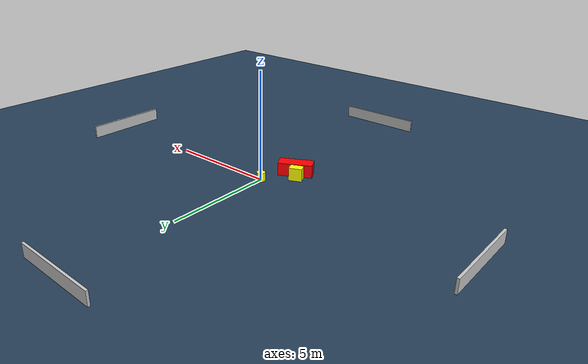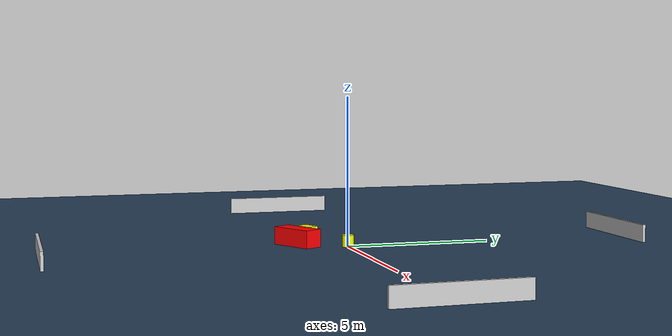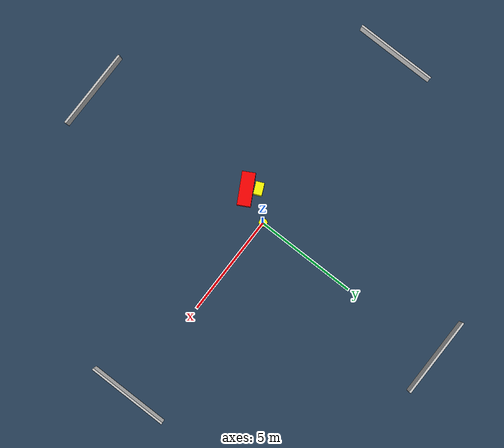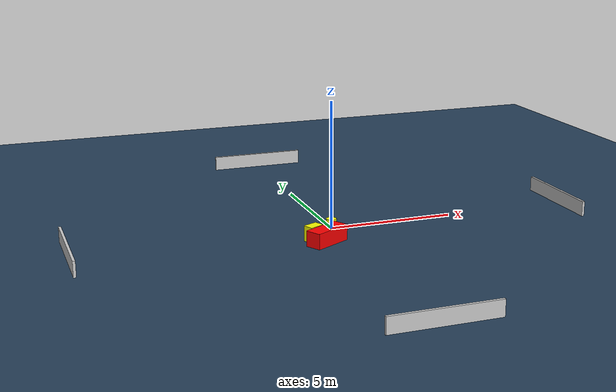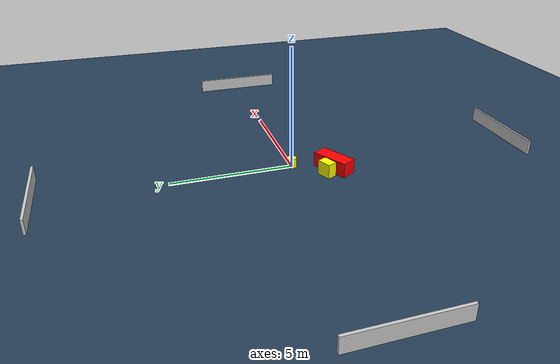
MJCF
<?xml version="1.0" ?>
<mujoco model="generated_environment">
  <option timestep="0.01" integrator="RK4" cone="elliptic"/>
  <default>
    <geom density="1"/>
  </default>
  <asset>
    <texture builtin="gradient" height="3072" name="skybox" rgb1="0.3 0.5 0.7" rgb2="0 0 0" type="skybox" width="512"/>
    <texture builtin="checker" height="300" name="groundplane" rgb1="0.2 0.3 0.4" rgb2="0.1 0.2 0.3" type="2d" width="300"/>
    <material name="groundplane" reflectance="0.2" texrepeat="5 5" texture="groundplane"/>
  </asset>
  <worldbody>
    <light dir="0 0 -1" directional="true" pos="0 0 1.5"/>
    <geom condim="3" friction="0.5 0.005 0.001" material="groundplane" name="floor" pos="0 0 0" size="0 0 0.05" type="plane"/>
    <body name="walls">
      <geom name="wall_1" condim="4" pos="-10.0 0.0 0.3" rgba="0.800000011920929 0.800000011920929 0.800000011920929 1.0" size="0.05 2.0 0.3" type="box"/>
      <geom name="wall_2" condim="4" pos="10.0 0.0 0.3" rgba="0.800000011920929 0.800000011920929 0.800000011920929 1.0" size="0.05 2.0 0.3" type="box"/>
      <geom name="wall_3" condim="4" pos="0.0 -10.0 0.3" rgba="0.800000011920929 0.800000011920929 0.800000011920929 1.0" size="2.0 0.05 0.3" type="box"/>
      <geom name="wall_4" condim="4" pos="0.0 10.0 0.3" rgba="0.800000011920929 0.800000011920929 0.800000011920929 1.0" size="2.0 0.05 0.3" type="box"/>
    </body>
    <body name="robot">
      <joint name="joint_x" type="slide" pos="0 0 0" axis="1 0 0"/>
      <joint name="joint_y" type="slide" pos="0 0 0" axis="0 1 0"/>
      <geom name="robot" type="cylinder" pos="0.0 0.0 0.2" size="0.2 0.2 0.0" mass="5.0" friction="1.0 0.005 0.0001" condim="4" rgba="1.0 1.0 0.0 1.0"/>
    </body>
    <body name="obstacle_1_movable">
      <geom name="obstacle_1_movable" condim="4" pos="-1.1118927855495933 -1.115189481525892 0.3" euler="0 0 24.54979415299404" friction="0.0 0.005 0.001" rgba="1.0 1.0 0.0 1.0" size="0.3007747259358769 0.20245263455904486 0.3" type="box" mass="0.1"/>
      <joint type="free"/>
    </body>
    <body name="obstacle_2_static">
      <geom name="obstacle_2_static" condim="4" pos="-0.7411302245336326 -1.5582825721472104 0.3" euler="0 0 208.92718148840729" friction="0.0 0.005 0.001" rgba="1.0 0.0 0.0 1.0" size="0.787226457495648 0.317740449057629 0.3" type="box"/>
    </body>
  </worldbody>
  <actuator>
    <motor name="actuator_x" joint="joint_x" gear="1" ctrlrange="-1 1"/>
    <motor name="actuator_y" joint="joint_y" gear="1" ctrlrange="-1 1"/>
  </actuator>
</mujoco>
